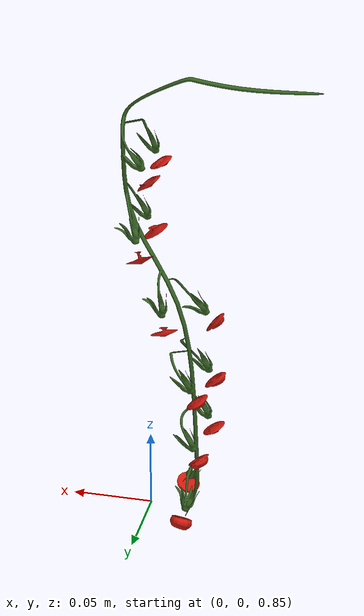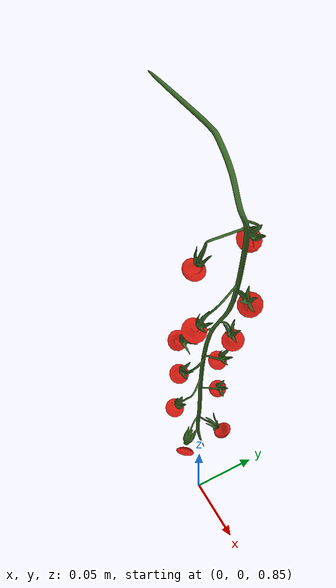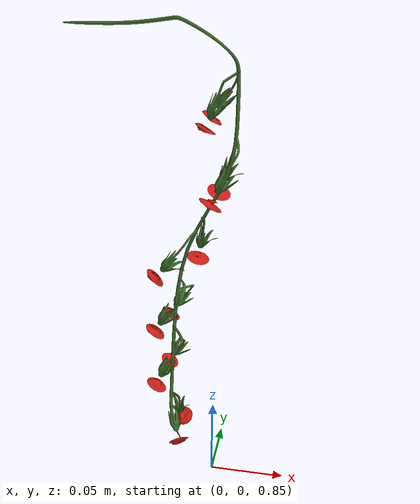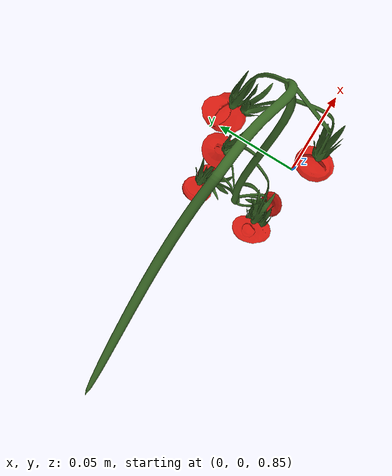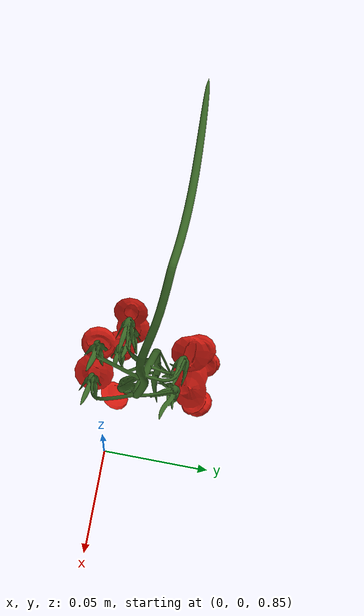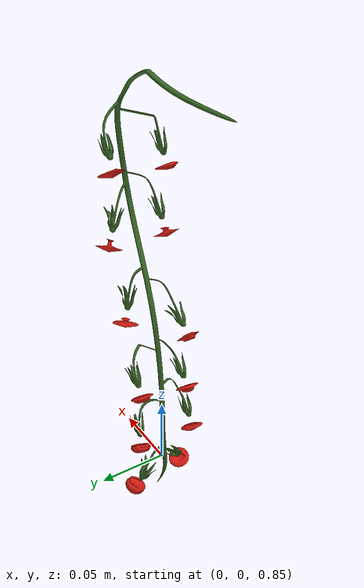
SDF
<?xml version="1.0"?>
<sdf version="1.6">
  <world name="dt">
    <include><uri>model://sun</uri></include>
    <include><uri>model://ground_plane</uri></include>
    <model name="truss_test">
      <static>true</static>
      <link name="link">
        <visual name="fruits">
          <geometry><mesh><uri>model://tomato1_truss/meshes/fruits.dae</uri></mesh></geometry>
          <material><ambient>0.82 0.10 0.06 1</ambient><diffuse>0.82 0.10 0.06 1</diffuse></material>
        </visual>
        <visual name="stems">
          <geometry><mesh><uri>model://tomato1_truss/meshes/stems.dae</uri></mesh></geometry>
          <material><ambient>0.22 0.40 0.14 1</ambient><diffuse>0.22 0.40 0.14 1</diffuse></material>
        </visual>
      </link>
    </model>
    <gui><camera name="user_camera"><pose>0.6 -0.7 1.1 0 0.1 0.7</pose></camera></gui>
  </world>
</sdf>
